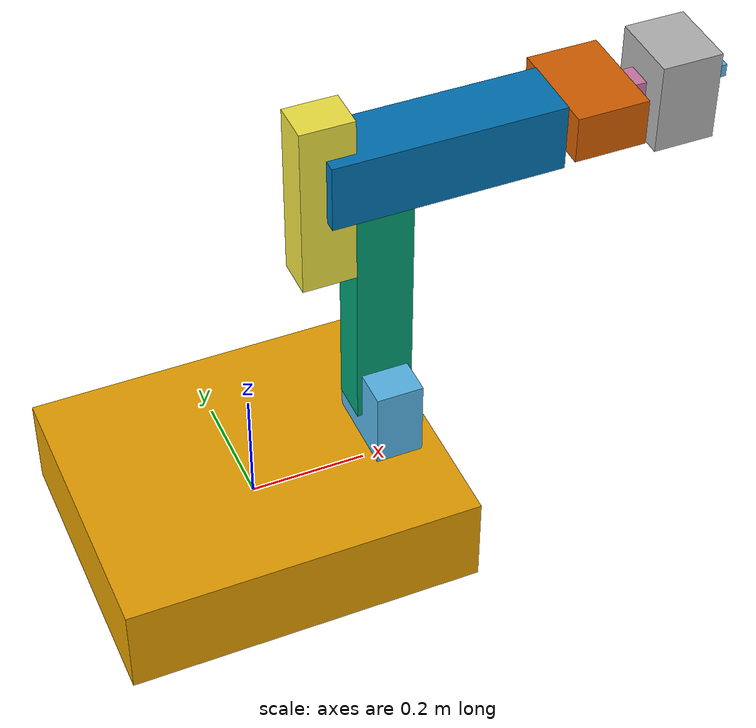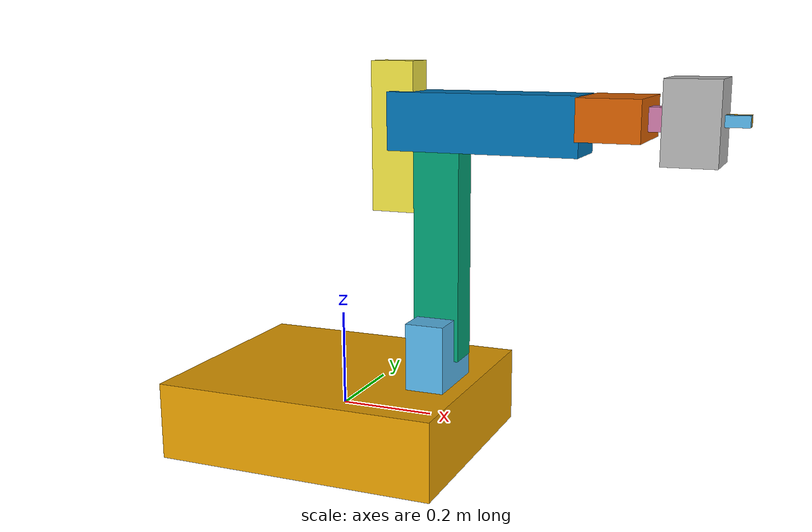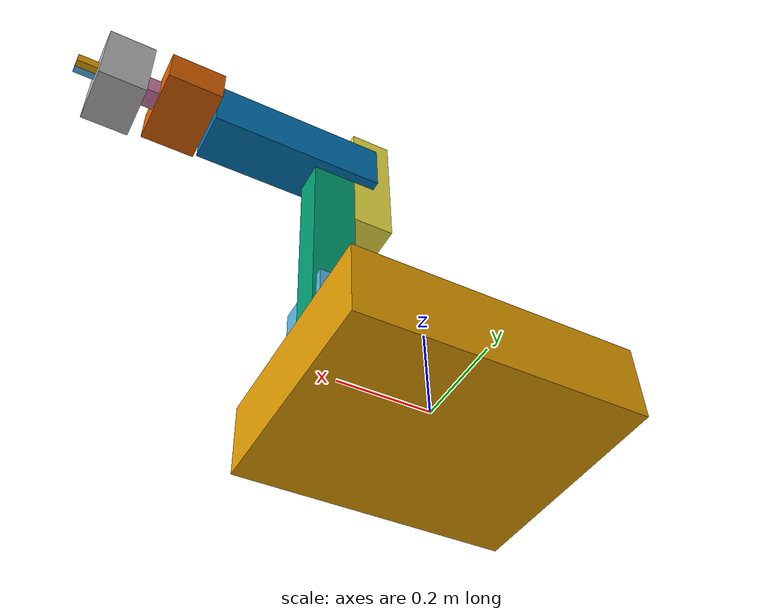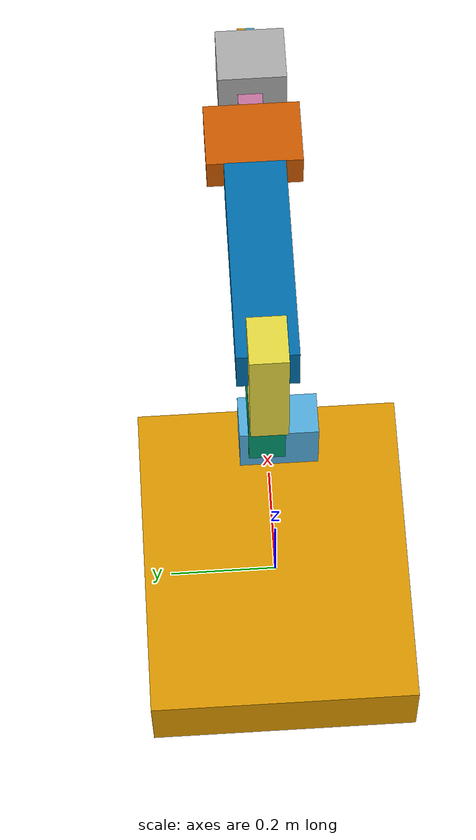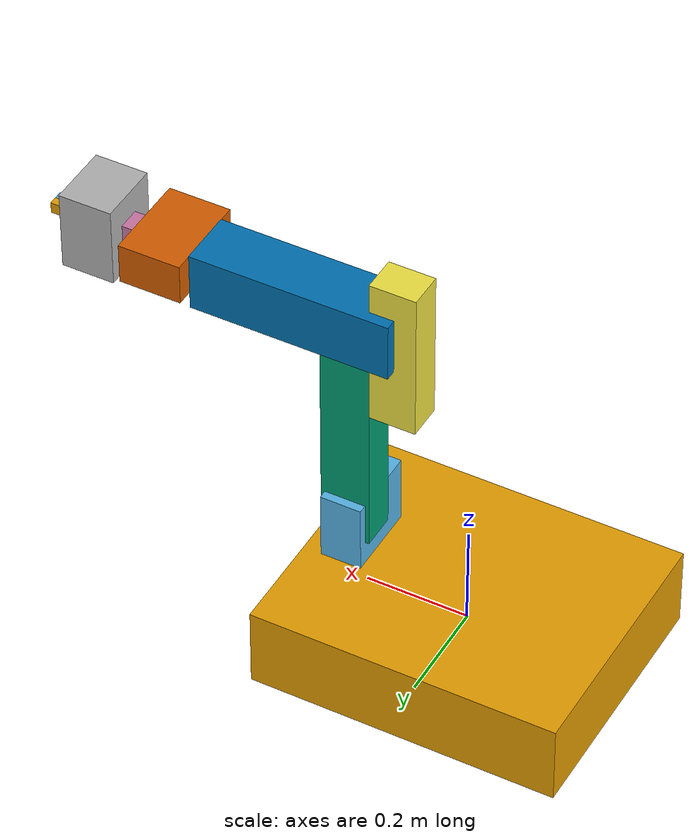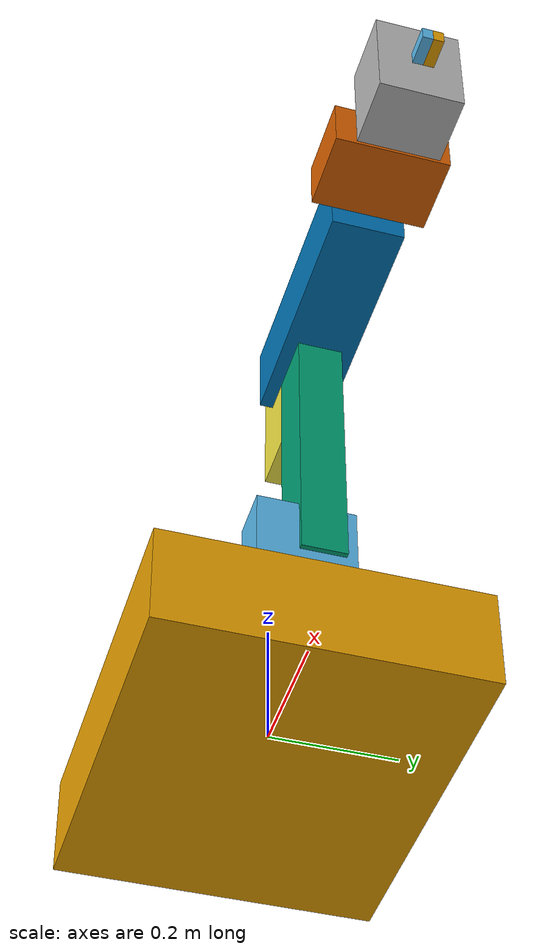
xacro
<?xml version="1.0"?>
<robot xmlns:xacro="http://www.ros.org/wiki/xacro" name="kerby">
    <xacro:arg name="initial_positions_file" default="initial_positions.yaml" />

    <!-- Import kerby urdf file -->
    <xacro:include filename="$(find kerby_description_ugly)/urdf/kerby.urdf.xacro" />

    <!-- Import control_xacro -->
    <xacro:include filename="kerby.ros2_control.xacro" />

    <xacro:kerby_ros2_control name="FakeSystem" initial_positions_file="$(arg initial_positions_file)"/>

</robot>

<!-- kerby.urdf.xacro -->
<robot xmlns:xacro="http://www.ros.org/wiki/xacro" name="kerby">

	<!-- ==========CONSANTS========== -->
	<!-- base_link is rover -->

	<!-- base_link constants -->
	<xacro:property name="base_link_dim_x" value="0.6" />
	<xacro:property name="base_link_dim_y" value="0.5" />
	<xacro:property name="base_link_dim_z" value="0.16125" />
	<xacro:property name="base_link_dim" value="0.6 0.5 0.16125" />
	<xacro:property name="base_link_btm_shift_x" value="0" />
	<xacro:property name="base_link_btm_shift_y" value="0" />
	<xacro:property name="base_link_btm_shift_z" value="0" />
	<xacro:property name="base_link_top_shift_x" value="${(0.525-(base_link_dim_x/2))}" />
	<xacro:property name="base_link_top_shift_y" value="0" />
	<xacro:property name="base_link_top_shift_z" value="${(base_link_dim_z/2)}" />
	<xacro:property name="base_link_origin" value="0 0 0" />
	<xacro:property name="base_link_attach_point" value="${((0.525-(base_link_dim_x/2))+0)} 0 ${((base_link_dim_z/2)+0)}" />

	<!-- link1 constants -->
	<xacro:property name="link1_dim_x" value="0.08" />
	<xacro:property name="link1_dim_y" value="0.1505" />
	<xacro:property name="link1_dim_z" value="0.138" />
	<xacro:property name="link1_dim" value="0.08 0.1505 0.138" />
	<xacro:property name="link1_btm_shift_x" value="0" />
	<xacro:property name="link1_btm_shift_y" value="${-((0.094-(link1_dim_y/2)))}" />
	<xacro:property name="link1_btm_shift_z" value="${(link1_dim_z/2)}" />
	<xacro:property name="link1_top_shift_x" value="0" />
	<xacro:property name="link1_top_shift_y" value="${(link1_dim_x-0.0565)}" />
	<xacro:property name="link1_top_shift_z" value="${(0.098-(link1_dim_z/2))}" />
	<xacro:property name="link1_origin" value="0 ${-((0.094-(link1_dim_y/2)))} ${(link1_dim_z/2)}" />
	<xacro:property name="link1_attach_point" value="0 ${((link1_dim_x-0.0565)+-((0.094-(link1_dim_y/2))))} ${((0.098-(link1_dim_z/2))+(link1_dim_z/2))}" />

	<!-- link2 constants -->
	<xacro:property name="link2_dim_x" value="0.096" />
	<xacro:property name="link2_dim_y" value="0.07" />
	<xacro:property name="link2_dim_z" value="0.487225" />
	<xacro:property name="link2_dim" value="0.096 0.07 0.487225" />
	<xacro:property name="link2_btm_shift_x" value="0" />
	<xacro:property name="link2_btm_shift_y" value="0" />
	<xacro:property name="link2_btm_shift_z" value="${-((0.048-(link2_dim_z/2)))}" />
	<xacro:property name="link2_top_shift_x" value="${(0.039225-(link2_dim_x/2))}" />
	<xacro:property name="link2_top_shift_y" value="0" />
	<xacro:property name="link2_top_shift_z" value="${((link2_dim_z/2)-0.039225)}" />
	<xacro:property name="link2_origin" value="0 0 ${-((0.048-(link2_dim_z/2)))}" />
	<xacro:property name="link2_attach_point" value="${((0.039225-(link2_dim_x/2))+0)} 0 ${(((link2_dim_z/2)-0.039225)+-((0.048-(link2_dim_z/2))))}" />

	<!-- motor_j3 constants -->
	<xacro:property name="motor_j3_dim_x" value="0.09" />
	<xacro:property name="motor_j3_dim_y" value="0.07" />
	<xacro:property name="motor_j3_dim_z" value="0.3" />
	<xacro:property name="motor_j3_dim" value="0.09 0.07 0.3" />
	<xacro:property name="motor_j3_btm_shift_x" value="-0.084225" />
	<xacro:property name="motor_j3_btm_shift_y" value="0" />
	<xacro:property name="motor_j3_btm_shift_z" value="0.004388" />
	<xacro:property name="motor_j3_top_shift_x" value="0" />
	<xacro:property name="motor_j3_top_shift_y" value="0" />
	<xacro:property name="motor_j3_top_shift_z" value="0" />
	<xacro:property name="motor_j3_origin" value="-0.084225 0 0.004388" />
	<xacro:property name="motor_j3_attach_point" value="-0.084225 0 0.004388" />

	<!-- link3 constants -->
	<xacro:property name="link3_dim_x" value="0.115" />
	<xacro:property name="link3_dim_y" value="0.112" />
	<xacro:property name="link3_dim_z" value="0.387" />
	<xacro:property name="link3_dim" value="0.115 0.112 0.387" />
	<xacro:property name="link3_btm_shift_x" value="${(0.02-(link3_dim_x/2))}" />
	<xacro:property name="link3_btm_shift_y" value="0" />
	<xacro:property name="link3_btm_shift_z" value="${-((0.087-(link3_dim_z/2)))}" />
	<xacro:property name="link3_top_shift_x" value="${(0.0415-(link3_dim_x/2))}" />
	<xacro:property name="link3_top_shift_y" value="0" />
	<xacro:property name="link3_top_shift_z" value="${(link3_dim_z/2)}" />
	<xacro:property name="link3_origin" value="${(0.02-(link3_dim_x/2))} 0 ${-((0.087-(link3_dim_z/2)))}" />
	<xacro:property name="link3_attach_point" value="${((0.0415-(link3_dim_x/2))+(0.02-(link3_dim_x/2)))} 0 ${((link3_dim_z/2)+-((0.087-(link3_dim_z/2))))}" />

	<!-- link4 constants -->
	<xacro:property name="link4_dim_x" value="0.08" />
	<xacro:property name="link4_dim_y" value="0.175" />
	<xacro:property name="link4_dim_z" value="0.1208" />
	<xacro:property name="link4_dim" value="0.08 0.175 0.1208" />
	<xacro:property name="link4_btm_shift_x" value="0" />
	<xacro:property name="link4_btm_shift_y" value="0" />
	<xacro:property name="link4_btm_shift_z" value="${(link4_dim_z/2)}" />
	<xacro:property name="link4_top_shift_x" value="0" />
	<xacro:property name="link4_top_shift_y" value="0" />
	<xacro:property name="link4_top_shift_z" value="${((link4_dim_z/2)-0.031)}" />
	<xacro:property name="link4_origin" value="0 0 ${(link4_dim_z/2)}" />
	<xacro:property name="link4_attach_point" value="0 0 ${(((link4_dim_z/2)-0.031)+(link4_dim_z/2))}" />

	<!-- link5 constants -->
	<xacro:property name="link5_dim_x" value="0.045" />
	<xacro:property name="link5_dim_y" value="0.045" />
	<xacro:property name="link5_dim_z" value="0.09455" />
	<xacro:property name="link5_dim" value="0.045 0.045 0.09455" />
	<xacro:property name="link5_btm_shift_x" value="0" />
	<xacro:property name="link5_btm_shift_y" value="0" />
	<xacro:property name="link5_btm_shift_z" value="${((link5_dim_z/2)-0.0318)}" />
	<xacro:property name="link5_top_shift_x" value="0" />
	<xacro:property name="link5_top_shift_y" value="0" />
	<xacro:property name="link5_top_shift_z" value="${(link5_dim_z/2)}" />
	<xacro:property name="link5_origin" value="0 0 ${((link5_dim_z/2)-0.0318)}" />
	<xacro:property name="link5_attach_point" value="0 0 ${    0.103+0.045+    ((link5_dim_z/2)+((link5_dim_z/2)-0.0318))}" />

	<!-- gripper_base constants -->
	<xacro:property name="gripper_base_dim_x" value="0.1565" />
	<xacro:property name="gripper_base_dim_y" value="0.125" />
	<xacro:property name="gripper_base_dim_z" value="0.103" />
	<xacro:property name="gripper_base_dim" value="0.1565 0.125 0.103" />
	<xacro:property name="gripper_base_btm_shift_x" value="${((gripper_base_dim_x/2)-0.076)}" />
	<xacro:property name="gripper_base_btm_shift_y" value="${-((0.0671-(gripper_base_dim_y/2)))}" />
	<xacro:property name="gripper_base_btm_shift_z" value="${(gripper_base_dim_z/2)}" />
	<xacro:property name="gripper_base_top_shift_x" value="${-(((gripper_base_dim_x/2)-0.076))}" />
	<xacro:property name="gripper_base_top_shift_y" value="${(0.0671-(gripper_base_dim_y/2))}" />
	<xacro:property name="gripper_base_top_shift_z" value="${(gripper_base_dim_z/2)}" />
	<xacro:property name="gripper_base_origin" value="${((gripper_base_dim_x/2)-0.076)} ${-((0.0671-(gripper_base_dim_y/2)))} ${(    -0.045-    gripper_base_dim_z/2)}" />
	<xacro:property name="gripper_base_attach_point" value="${(-(((gripper_base_dim_x/2)-0.076))+((gripper_base_dim_x/2)-0.076))} ${((0.0671-(gripper_base_dim_y/2))+-((0.0671-(gripper_base_dim_y/2))))} ${(    -0.045-    (gripper_base_dim_z/2)+(gripper_base_dim_z/2))}" />

	<!-- gripper_left_finger constants -->
	<xacro:property name="gripper_left_finger_dim_x" value="0.0215" />
	<xacro:property name="gripper_left_finger_dim_y" value="0.016" />
	<xacro:property name="gripper_left_finger_dim_z" value="0.045" />
	<xacro:property name="gripper_left_finger_dim" value="0.0215 0.016 0.045" />
	<xacro:property name="gripper_left_finger_btm_shift_x" value="0" />
	<xacro:property name="gripper_left_finger_btm_shift_y" value="${(gripper_left_finger_dim_y/2)}" />
	<xacro:property name="gripper_left_finger_btm_shift_z" value="${(gripper_left_finger_dim_z/2)}" />
	<xacro:property name="gripper_left_finger_top_shift_x" value="0" />
	<xacro:property name="gripper_left_finger_top_shift_y" value="0" />
	<xacro:property name="gripper_left_finger_top_shift_z" value="0" />
	<xacro:property name="gripper_left_finger_origin" value="0 ${(gripper_left_finger_dim_y/2)} ${(gripper_left_finger_dim_z/2)}" />
	<xacro:property name="gripper_left_finger_attach_point" value="0 ${((gripper_left_finger_dim_y/2)+0)} ${((gripper_left_finger_dim_z/2)+0)}" />

	<!-- gripper_right_finger constants -->
	<xacro:property name="gripper_right_finger_dim_x" value="0.0215" />
	<xacro:property name="gripper_right_finger_dim_y" value="0.016" />
	<xacro:property name="gripper_right_finger_dim_z" value="0.045" />
	<xacro:property name="gripper_right_finger_dim" value="0.0215 0.016 0.045" />
	<xacro:property name="gripper_right_finger_btm_shift_x" value="0" />
	<xacro:property name="gripper_right_finger_btm_shift_y" value="${(-(gripper_right_finger_dim_y)/2)}" />
	<xacro:property name="gripper_right_finger_btm_shift_z" value="${(gripper_right_finger_dim_z/2)}" />
	<xacro:property name="gripper_right_finger_top_shift_x" value="0" />
	<xacro:property name="gripper_right_finger_top_shift_y" value="0" />
	<xacro:property name="gripper_right_finger_top_shift_z" value="0" />
	<xacro:property name="gripper_right_finger_origin" value="0 ${(-(gripper_right_finger_dim_y)/2)} ${(gripper_right_finger_dim_z/2)}" />
	<xacro:property name="gripper_right_finger_attach_point" value="0 ${((-(gripper_right_finger_dim_y)/2)+0)} ${((gripper_right_finger_dim_z/2)+0)}" />

	<!-- ==========LINKS========== -->

	<!-- base_link -->
	<link name="base_link">
		<visual>
			<geometry>
				<box size="${base_link_dim}"/>
			</geometry>
			<origin xyz="${base_link_origin}" />
		</visual>
		<collision>
			<geometry>
				<box size="${base_link_dim}"/>
			</geometry>
			<origin xyz="${base_link_origin}" />
		</collision>
	</link>

	<!-- link1 -->
	<link name="link1">
		<visual>
			<geometry>
				<box size="${link1_dim}"/>
			</geometry>
			<origin xyz="${link1_origin}" />
		</visual>
		<collision>
			<geometry>
				<box size="${link1_dim}"/>
			</geometry>
			<origin xyz="${link1_origin}" />
		</collision>
	</link>

	<!-- link2 -->
	<link name="link2">
		<visual>
			<geometry>
				<box size="${link2_dim}"/>
			</geometry>
			<origin xyz="${link2_origin}" />
		</visual>
		<collision>
			<geometry>
				<box size="${link2_dim}"/>
			</geometry>
			<origin xyz="${link2_origin}" />
		</collision>
	</link>

	<!-- motor_j3 -->
	<link name="motor_j3">
		<visual>
			<geometry>
				<box size="${motor_j3_dim}"/>
			</geometry>
			<origin xyz="${motor_j3_origin}" />
		</visual>
		<collision>
			<geometry>
				<box size="${motor_j3_dim}"/>
			</geometry>
			<origin xyz="${motor_j3_origin}" />
		</collision>
	</link>

	<!-- link3 -->
	<link name="link3">
		<visual>
			<geometry>
				<box size="${link3_dim}"/>
			</geometry>
			<origin xyz="${link3_origin}" />
		</visual>
		<collision>
			<geometry>
				<box size="${link3_dim}"/>
			</geometry>
			<origin xyz="${link3_origin}" />
		</collision>
	</link>

	<!-- link4 -->
	<link name="link4">
		<visual>
			<geometry>
				<box size="${link4_dim}"/>
			</geometry>
			<origin xyz="${link4_origin}" />
		</visual>
		<collision>
			<geometry>
				<box size="${link4_dim}"/>
			</geometry>
			<origin xyz="${link4_origin}" />
		</collision>
	</link>

	<!-- link5 -->
	<link name="link5">
		<visual>
			<geometry>
				<box size="${link5_dim}"/>
			</geometry>
			<origin xyz="${link5_origin}" />
		</visual>
		<collision>
			<geometry>
				<box size="${link5_dim}"/>
			</geometry>
			<origin xyz="${link5_origin}" />
		</collision>
	</link>

	<!-- gripper_base -->
	<link name="gripper_base">
		<visual>
			<geometry>
				<box size="${gripper_base_dim}"/>
			</geometry>
			<origin xyz="${gripper_base_origin}" />
		</visual>
		<collision>
			<geometry>
				<box size="${gripper_base_dim}"/>
			</geometry>
			<origin xyz="${gripper_base_origin}" />
		</collision>
	</link>

	<!-- gripper_left_finger -->
	<link name="gripper_left_finger">
		<visual>
			<geometry>
				<box size="${gripper_left_finger_dim}"/>
			</geometry>
			<origin xyz="${gripper_left_finger_origin}" />
		</visual>
		<collision>
			<geometry>
				<box size="${gripper_left_finger_dim}"/>
			</geometry>
			<origin xyz="${gripper_left_finger_origin}" />
		</collision>
	</link>

	<!-- gripper_right_finger -->
	<link name="gripper_right_finger">
		<visual>
			<geometry>
				<box size="${gripper_right_finger_dim}"/>
			</geometry>
			<origin xyz="${gripper_right_finger_origin}" />
		</visual>
		<collision>
			<geometry>
				<box size="${gripper_right_finger_dim}"/>
			</geometry>
			<origin xyz="${gripper_right_finger_origin}" />
		</collision>
	</link>

	<!-- ==========JOINTS========== -->

	<!-- joint1 -->
	<joint name="joint1" type="revolute">
		<parent link="base_link"/>
		<child link="link1"/>
		<origin xyz="${base_link_attach_point}" />
		<axis xyz="0 0 1"/>
		<limit effort="10" velocity="0.2" lower="${(pi*-3/4)}" upper="${(pi*3/4)}"/>
	</joint>

	<!-- joint2 -->
	<joint name="joint2" type="revolute">
		<parent link="link1"/>
		<child link="link2"/>
		<origin xyz="${link1_attach_point}" />
		<axis xyz="0 1 0"/>
		<limit effort="10" velocity="0.2" lower="-1.34" upper="2.07"/>
	</joint>

	<!-- motor_j3_joint -->
	<joint name="motor_j3_joint" type="fixed">
		<parent link="link2"/>
		<child link="motor_j3"/>
		<origin xyz="${link2_attach_point}" />
		<axis xyz="1 0 0"/>
		<limit effort="1" velocity="0.2" lower="${-(pi)}" upper="${pi}"/>
	</joint>

	<!-- joint3 -->
	<joint name="joint3" type="revolute">
		<parent link="link2"/>
		<child link="link3"/>
		<origin xyz="${link2_attach_point}" rpy="0 ${pi/2} 0" />
		<axis xyz="0 1 0"/>
		<limit effort="10" velocity="0.2" lower="-1.1" upper="1.3"/>
	</joint>

	<!-- joint4 -->
	<joint name="joint4" type="revolute">
		<parent link="link3"/>
		<child link="link4"/>
		<origin xyz="${link3_attach_point}" />
		<axis xyz="0 0 1"/>
		<limit effort="10" velocity="0.2" lower="${(pi/-2)}" upper="${(pi/2)}"/>
	</joint>

	<!-- joint5 -->
	<joint name="joint5" type="revolute">
		<parent link="link4"/>
		<child link="link5"/>
		<origin xyz="${link4_attach_point}" />
		<axis xyz="0 1 0"/>
		<limit effort="10" velocity="0.2" lower="-2.8" upper="2.3"/>
	</joint>

	<!-- joint6 -->
	<joint name="joint6" type="revolute">
		<parent link="link5"/>
		<child link="gripper_base"/>
		<origin xyz="${link5_attach_point}" />
		<axis xyz="0 0 1"/>
		<limit effort="10" velocity="0.2" lower="${-4.2}" upper="${3.8}"/>
	</joint>

	<!-- gripper_left_finger_joint -->
	<joint name="gripper_left_finger_joint" type="prismatic">
		<parent link="gripper_base"/>
		<child link="gripper_left_finger"/>
		<origin xyz="${gripper_base_attach_point}" />
		<axis xyz="0 1 0"/>
		<limit effort="1" velocity="0.5" lower="0" upper="0.04"/>
	</joint>

	<!-- gripper_right_finger_joint -->
	<joint name="gripper_right_finger_joint" type="prismatic">
		<parent link="gripper_base"/>
		<child link="gripper_right_finger"/>
		<origin xyz="${gripper_base_attach_point}" />
		<axis xyz="0 1 0"/>
		<limit effort="1" velocity="0.5" lower="0" upper="0.1"/>
		<mimic joint="gripper_left_finger_joint" multiplier="-1" offset="0"/>
	</joint>

</robot>
